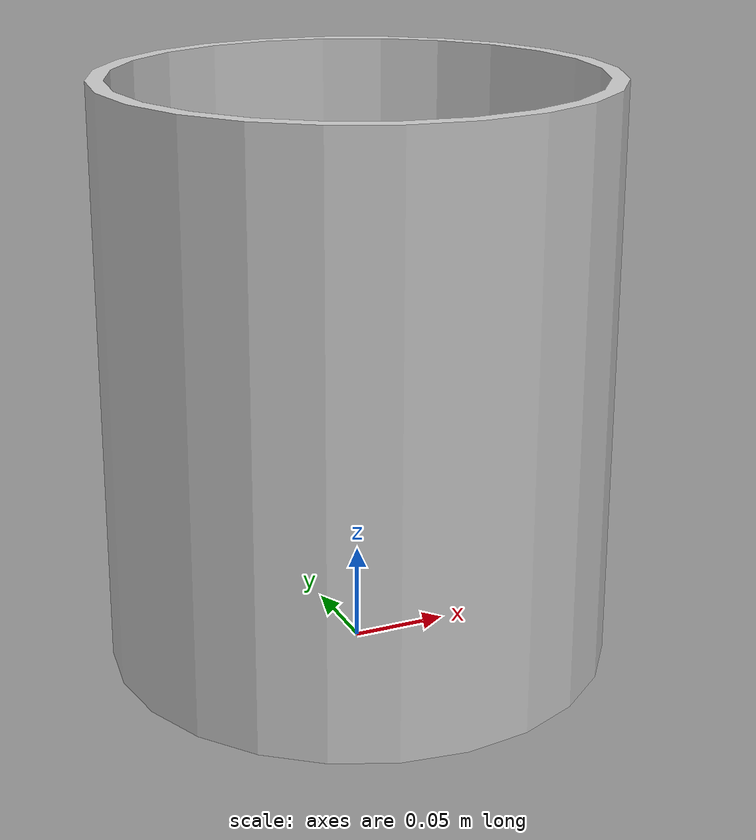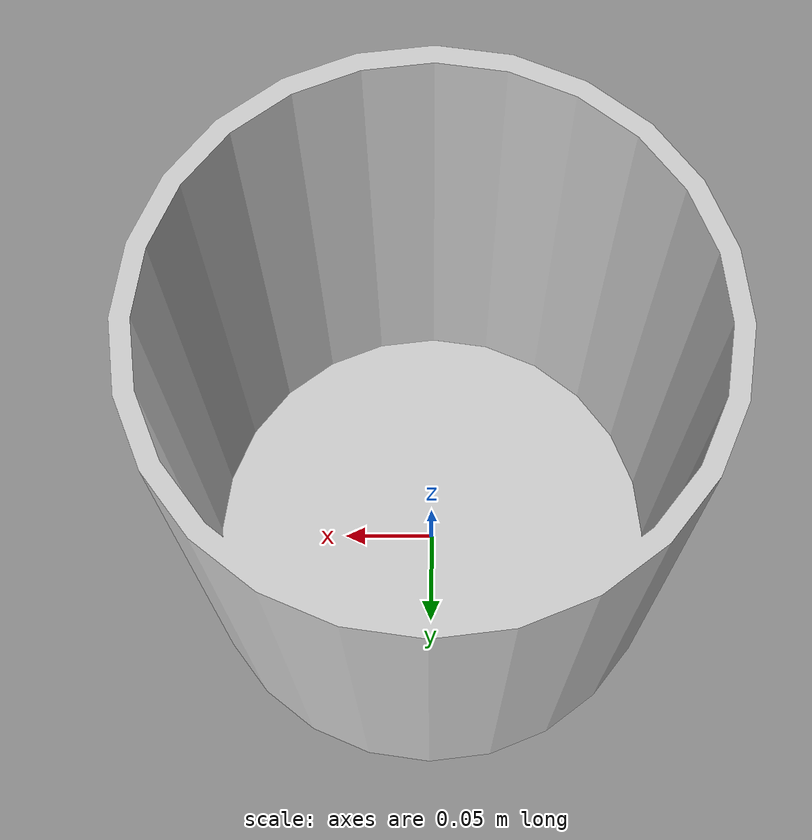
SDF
<?xml version='1.0'?>
<sdf version='1.9'>
  <model name='bucket_250_300'>
    <pose>0 0 0 0 0 0</pose>
    <link name='base_link'>
      <velocity_decay>
        <linear>0.0</linear>
        <angular>0.0</angular>
      </velocity_decay>
      <inertial>
        <pose>0 0 0 0 0 0</pose>
        <mass>1.5</mass>
        <inertia>
          <ixx>0.008</ixx>
          <ixy>0</ixy>
          <ixz>0</ixz>
          <iyy>0.015</iyy>
          <iyz>0</iyz>
          <izz>0.017</izz>
        </inertia>
      </inertial>
      <collision name='base_collision'>
        <pose>0 0 0.15 0 0 0</pose>
        <geometry>
         <cylinder>
          <radius>0.075</radius>
          <length>0.30</length>
        </cylinder>
        </geometry>
        <surface>
          <contact>
            <ode>
              <max_vel>100.0</max_vel>
              <min_depth>0.001</min_depth>
            </ode>
          </contact>
          <friction>
            <ode>
              <mu>0.3</mu>
              <mu2>0.3</mu2>
            </ode>
          </friction>
        </surface>
      </collision>
      <visual name='base_visual'>
        <geometry>
          <mesh>
            <uri>meshes/bucket_250_300.dae</uri>
          </mesh>
        </geometry>
        <material>
          <ambient>0.05 0.05 0.05 1</ambient> <!-- 环境光较低，增加一点微弱的环境光效果 -->
          <diffuse>0.8 0.8 0.8 1</diffuse> <!-- 高漫反射值，代表白色塑料的主体颜色 -->
          <specular>0.5 0.5 0.5 1</specular> <!-- 适中的镜面反射值，增加塑料的光泽感 -->
        </material>
      </visual>
    </link>
  </model>
</sdf>
